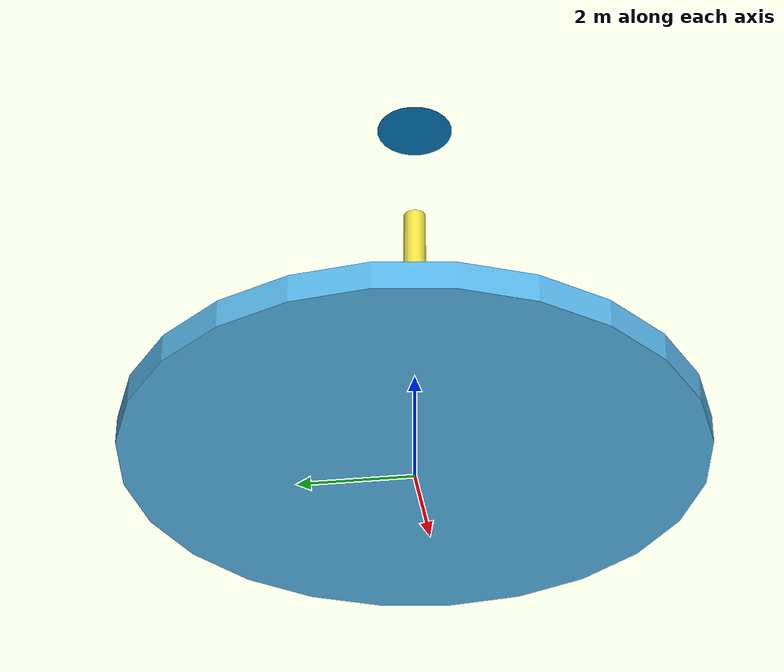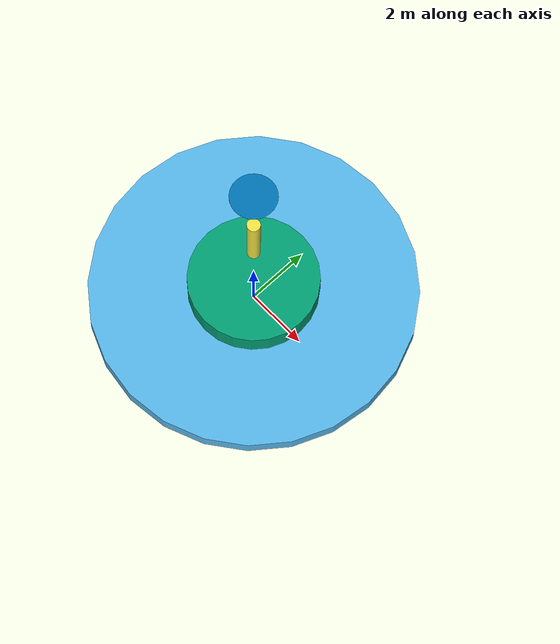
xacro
<?xml version="1.0" ?>
	<robot name="basicarm" xmlns:xacro="http://www.ros.org/wiki/xacro">
	<xacro:property name="pi" value="3.1415926535897931"/>
	<xacro:property name="r" value="2"/>      <!-- radius of the arm -->
	<xacro:property name="l1" value="1"/>       <!-- Length of arm-1 -->
	<xacro:property name="l2" value="2"/>       <!-- Length of arm-2 -->
	<xacro:property name="m" value="1"/>        <!-- arbitrary value for mass -->

	<link name="world"/>

	<joint name="world_base" type="fixed">
		<parent link="world"/>
    	<child link="base_link"/>
    	<origin xyz="0 0 0" rpy="0 0 0"/>
    </joint>

	<link name="base_link">
		<inertial>
			<mass value="${m}"/>
			<origin xyz="0 0 0.5" rpy="0 0 0"/>
			<inertia
				ixx="2" ixy="2" ixz="0.0"
				iyy="0" iyz="0.0"
				izz="3"/>
		</inertial>
		<visual>
			<origin rpy="0 0 0" xyz="0 0 0.5"/>
			<geometry>
				<cylinder radius="5" length="0.5"/>
			</geometry>
		</visual>
	</link>

	<joint name="base_link__link_01" type="revolute">
		<axis xyz="0 1 1" />
		<dynamics damping="0.7"/>
		<limit effort="1000.0" lower="-3.14" upper="3.14" velocity="0.5"/>
		<origin py="0 0 0" xyz="0 0 0.5"/>
		<parent link="base_link"/>
		<child link="link1"/>
	</joint>

	<link name="link1">                         <!--Base arm 1 -->
		<inertial>
			<mass value="${m}"/>
			<origin xyz="0 0 0.5" rpy="0 0 0"/>
			<inertia
			ixx="${m/3.0 * (l1*l1)}" ixy="0.0" ixz="0.0"
			iyy="${m/3.0 * (l1*l1)}" iyz="0.0"
			izz="${m/2.0 * (r*r)}"/>
		</inertial>
		<visual>
			<origin rpy="0 0 0" xyz="0 0 0.5"/>
			<geometry>
				<cylinder radius="${r}" length="${l1}"/>
			</geometry>
		</visual>
	</link>

	<joint name="link1__link_2" type="revolute">
		<axis xyz="0 1 0" />
		<dynamics damping="0.7"/>
		<limit effort="1000.0" lower="-3.14" upper="3.14" velocity="0.5"/>
		<origin py="0 0 0" xyz="0 0 1.5"/>
		<parent link="link1"/>
		<child link="link2"/>
	</joint>

	<link name="link2">
		<inertial>
			<mass value="${m}"/>
			<origin xyz="0 0 2" rpy="0 0 0"/>
			<inertia
			ixx="${m/3.0 * (l1*l1)}" ixy="0.0" ixz="0.0"
			iyy="${m/3.0 * (l1*l1)}" iyz="0.0"
			izz="${m/2.0 * (r*r)}"/>
		</inertial>
		<visual>
			<origin rpy="0 0 0" xyz="0 0 2.5"/>
			<geometry>
			<cylinder radius="0.2" length="2.0"/>
			</geometry>
		</visual>
	</link>

	<joint name="link2__link_3" type="revolute">
		<axis xyz="0 1 0" />
		<limit effort="1000.0" lower="-3.14" upper="3.14" velocity="0.5"/>
		<origin py="0 0 0" xyz="0 0 1"/>
		<dynamics damping="0.7"/>
		<parent link="link2"/>
		<child link="link3"/>
	</joint>

	<link name="link3">
		<inertial>
			<mass value="${m}"/>
			<origin xyz="0 0 3" rpy="0 0 0"/>
			<inertia
			ixx="5" ixy="0.0" ixz="0.0"
			iyy="5" iyz="0.0"
			izz="5"/>
		</inertial>

		<visual>
			<origin rpy="0 0 0" xyz="0 0 4.5"/>
			<geometry>
			<cylinder radius="0.69" length="0.005"/>
			</geometry>
		</visual>
	</link>
</robot>

  <gazebo>
    <plugin name="gazebo_ros_control" filename="libgazebo_ros_control.so">
      <robotNamespace>/simple_model</robotNamespace>
    </plugin>
  </gazebo>

  <!-- transmission -->
  <transmission name="base_to_second_trans">
    <type>transmission_interface/SimpleTransmission</type>
    <actuator name="motor1">
      <mechanicalReduction>1</mechanicalReduction>
    </actuator>
    <joint name="base_link__link_01">
      <hardwareInterface>EffortJointInterface</hardwareInterface>
    </joint>
  </transmission>
